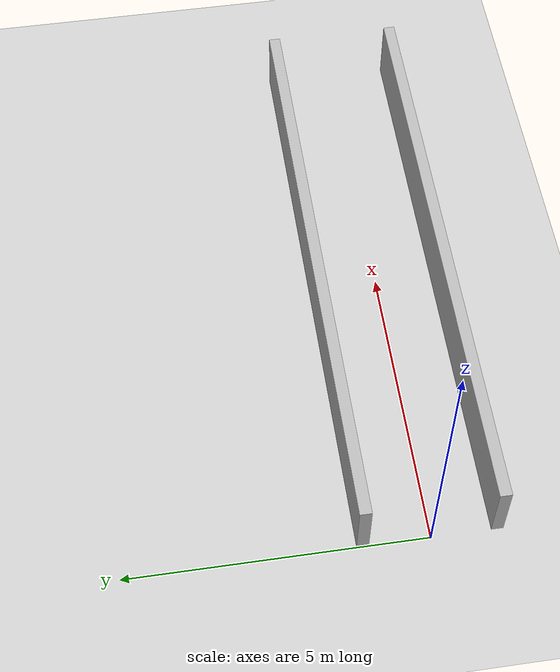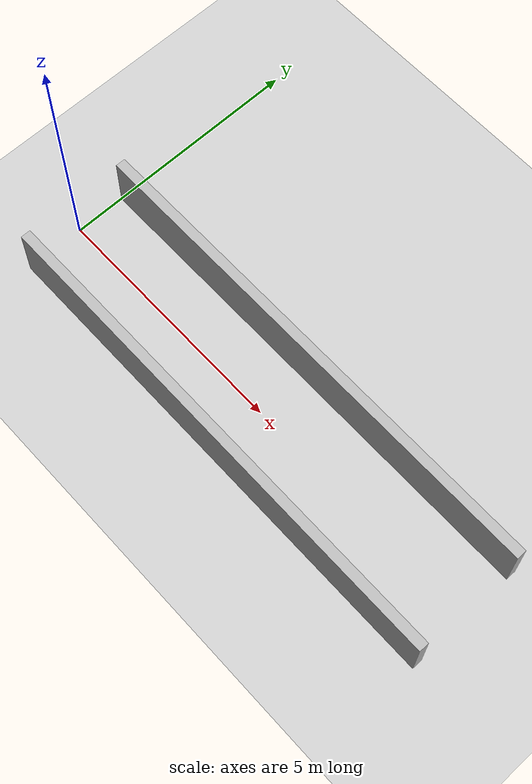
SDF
<?xml version="1.0"?>
<sdf version="1.6">
  <world name="v2-04g-r6-i3-compile-support-corridor-s5156">
    <gravity>0 0 -9.81</gravity>
    <physics name="v2_deterministic" type="ode">
      <max_step_size>0.002</max_step_size>
      <real_time_update_rate>500</real_time_update_rate>
    </physics>
    <include>
      <uri>model://sun</uri>
    </include>
    <include>
      <uri>model://ground_plane</uri>
    </include>
    <model name="corridor-left">
      <static>true</static>
      <pose>5.013091371 1.110358745 0.600000000 0 0 -0.000374534</pose>
      <link name="link">
        <collision name="collision">
          <geometry>
            <box>
              <size>10.000000 0.200000 1.200000</size>
            </box>
          </geometry>
        </collision>
        <visual name="visual">
          <geometry>
            <box>
              <size>10.000000 0.200000 1.200000</size>
            </box>
          </geometry>
        </visual>
      </link>
    </model>
    <model name="corridor-right">
      <static>true</static>
      <pose>5.006353799 -1.098957361 0.600000000 0 0 -0.002670854</pose>
      <link name="link">
        <collision name="collision">
          <geometry>
            <box>
              <size>10.000000 0.200000 1.200000</size>
            </box>
          </geometry>
        </collision>
        <visual name="visual">
          <geometry>
            <box>
              <size>10.000000 0.200000 1.200000</size>
            </box>
          </geometry>
        </visual>
      </link>
    </model>
  </world>
</sdf>
